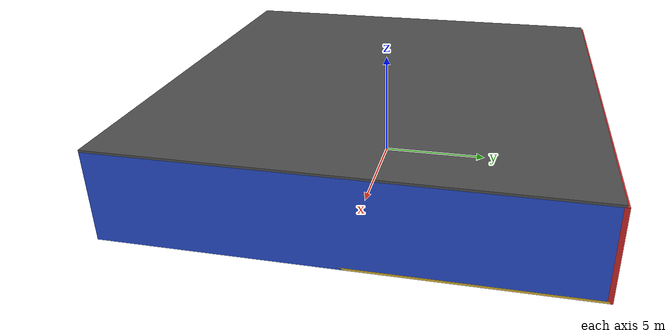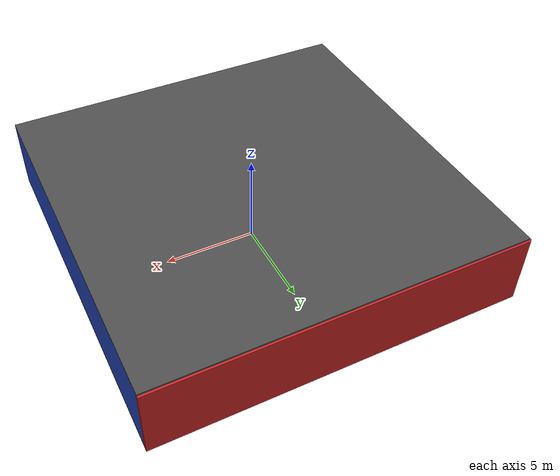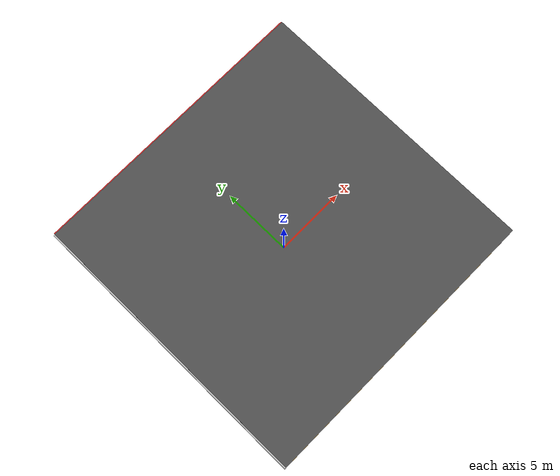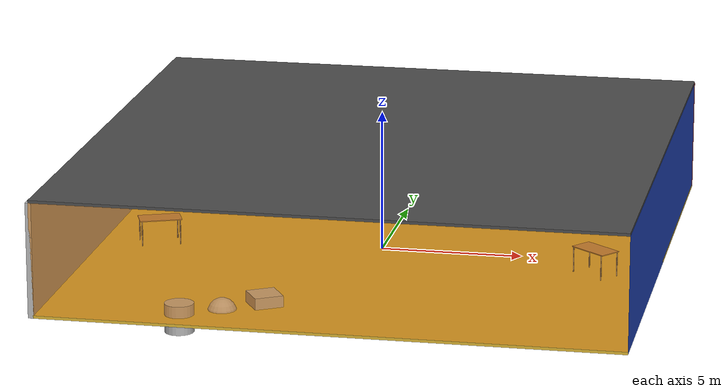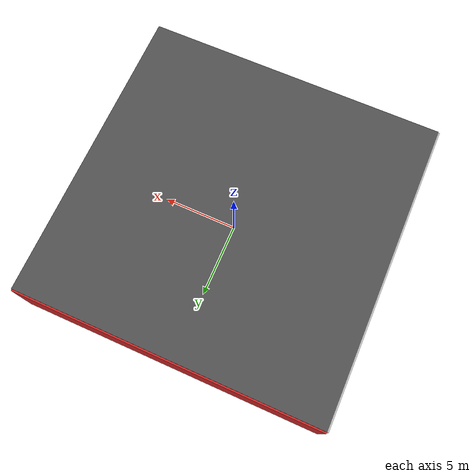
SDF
<sdf version="1.4">
 <world name="default">
  <physics type="ode">
   <max_step_size>0.001</max_step_size>
   <real_time_factor>1</real_time_factor>
   <real_time_update_rate>1000</real_time_update_rate>
   <gravity>0 0 -9.8</gravity>
  </physics>
  <scene><ambient>0.4 0.4 0.4 1</ambient><background>0.7 0.7 0.7 1</background><shadows>1</shadows></scene>
  <model name="Surrounding">
   <static>1</static>
   <link name="Ceiling">
    <collision name="Ceiling_Collision"><geometry><box><size>20 20 0.1</size></box></geometry></collision>
    <visual name="Ceiling_Visual">
     <geometry><box><size>20 20 0.1</size></box></geometry>
     <material>
      <script><uri>file://media/materials/scripts/gazebo.material</uri><name>Gazebo/DarkGrey</name></script>
     </material>
    </visual>
    <pose>0 0 4.05 0 0 0</pose>
   </link>
   <link name="Wall_South">
    <collision name="Wall_South_Collision">
     <geometry><box><size>20 0 4</size></box></geometry>
     <pose>0 0 2 0 -0 0</pose>
    </collision>
    <visual name="Wall_South_Visual">
     <pose>0 0 2 0 -0 0</pose>
     <geometry><box><size>20 0 4</size></box></geometry>
     <material>
      <script>
       <uri>file://media/materials/scripts/gazebo.material</uri>
       <name>Gazebo/OrangeTransparent</name>
      </script>
     </material>
    </visual>
    <velocity_decay><linear>0</linear><angular>0</angular></velocity_decay>
    <pose>0 -10 0 0 -0 0</pose>
   </link>
   <link name="Wall_East">
    <collision name="Wall_21_Collision">
     <geometry><box><size>20 0 4</size></box></geometry>
     <pose>0 0 2 0 -0 0</pose>
    </collision>
    <visual name="Wall_21_Visual">
     <pose>0 0 2 0 -0 0</pose>
     <geometry><box><size>20 0 4</size></box></geometry>
     <material>
      <script><uri>file://media/materials/scripts/gazebo.material</uri><name>Gazebo/Blue</name></script>
     </material>
    </visual>
    <velocity_decay><linear>0</linear><angular>0</angular></velocity_decay>
    <pose>10 0 0 0 -0 1.5708</pose>
   </link>
   <link name="Wall_North">
    <collision name="Wall_22_Collision">
     <geometry><box><size>20 0.2 4</size></box></geometry>
     <pose>0 0 2 0 -0 0</pose>
    </collision>
    <visual name="Wall_22_Visual">
     <pose>0 0 2 0 -0 0</pose>
     <geometry><box><size>20 0.2 4</size></box></geometry>
     <material>
      <script><uri>file://media/materials/scripts/gazebo.material</uri><name>Gazebo/RedGlow</name></script>
     </material>
    </visual>
    <velocity_decay><linear>0</linear><angular>0</angular></velocity_decay>
    <pose>0 10 0 0 -0 0</pose>
   </link>
   <link name="Wall_West">
    <collision name="Wall_23_Collision">
     <geometry><box><size>20 0.2 4</size></box></geometry>
     <pose>0 0 2 0 -0 0</pose>
    </collision>
    <visual name="Wall_23_Visual">
     <pose>0 0 2 0 -0 0</pose>
     <geometry><box><size>20 0.2 4</size></box></geometry>
     <material>
      <script><uri>file://media/materials/scripts/gazebo.material</uri><name>Gazebo/CloudySky</name></script>
     </material>
    </visual>
    <velocity_decay><linear>0</linear><angular>0</angular></velocity_decay>
    <pose>-10 0 0 0 0 -1.5708</pose>
   </link>
   <link name="Ground_link">
    <collision name="collision">
     <pose>0 0 .05 0 -0 0</pose>
     <geometry><box><size>20 20 0.1</size></box></geometry>
    </collision>
    <visual name="visual">
     <pose>0 0 .05 0 -0 0</pose>
     <geometry><box><size>20 20 0.1</size></box></geometry>
     <material>
      <script><uri>file://media/materials/scripts/gazebo.material</uri><name>Gazebo/Gold</name></script>
     </material>
    </visual>
   </link>
   <static>1</static>
  </model>
  <spherical_coordinates>
   <surface_model>EARTH_WGS84</surface_model>
   <latitude_deg>0</latitude_deg>
   <longitude_deg>0</longitude_deg>
   <elevation>0</elevation>
   <heading_deg>0</heading_deg>
  </spherical_coordinates>
  <light name="lightball_0" type="diffuse">
   <diffuse>0.8 0.8 0.8 1</diffuse>
   <specular>0.2 0.2 0.2 1</specular>
   <attenuation>
    <range>100</range>
    <constant>0.7</constant>
    <linear>0.01</linear>
    <quadratic>0.001</quadratic>
   </attenuation>
   <direction>-0.5 0.1 -0.9</direction>
   <pose>7.6658763178 5.88662987145 2.43984470793 0 0 0</pose>
  </light>
  <light name="lightball_1" type="diffuse">
   <diffuse>0.8 0.8 0.8 1</diffuse>
   <specular>0.2 0.2 0.2 1</specular>
   <attenuation>
    <range>100</range>
    <constant>0.7</constant>
    <linear>0.01</linear>
    <quadratic>0.001</quadratic>
   </attenuation>
   <direction>-0.5 0.1 -0.9</direction>
   <pose>8.89712538839 8.70801894706 1.49318809151 0 0 0</pose>
  </light>
  <light name="lightball_2" type="diffuse">
   <diffuse>0.8 0.8 0.8 1</diffuse>
   <specular>0.2 0.2 0.2 1</specular>
   <attenuation>
    <range>100</range>
    <constant>0.7</constant>
    <linear>0.01</linear>
    <quadratic>0.001</quadratic>
   </attenuation>
   <direction>-0.5 0.1 -0.9</direction>
   <pose>7.46115561334 -3.3486737448 2.62247427552 0 0 0</pose>
  </light>
  <light name="lightball_3" type="diffuse">
   <diffuse>0.8 0.8 0.8 1</diffuse>
   <specular>0.2 0.2 0.2 1</specular>
   <attenuation>
    <range>100</range>
    <constant>0.7</constant>
    <linear>0.01</linear>
    <quadratic>0.001</quadratic>
   </attenuation>
   <direction>-0.5 0.1 -0.9</direction>
   <pose>-3.26896051837 -2.53673465006 2.44839715145 0 0 0</pose>
  </light>
  <light name="lightball_4" type="diffuse">
   <diffuse>0.8 0.8 0.8 1</diffuse>
   <specular>0.2 0.2 0.2 1</specular>
   <attenuation>
    <range>100</range>
    <constant>0.7</constant>
    <linear>0.01</linear>
    <quadratic>0.001</quadratic>
   </attenuation>
   <direction>-0.5 0.1 -0.9</direction>
   <pose>-3.09807112535 0.978881351651 2.83631910568 0 0 0</pose>
  </light>
  <light name="lightball_5" type="diffuse">
   <diffuse>0.8 0.8 0.8 1</diffuse>
   <specular>0.2 0.2 0.2 1</specular>
   <attenuation>
    <range>100</range>
    <constant>0.7</constant>
    <linear>0.01</linear>
    <quadratic>0.001</quadratic>
   </attenuation>
   <direction>-0.5 0.1 -0.9</direction>
   <pose>3.77560866256 7.46554295576 3.79837902072 0 0 0</pose>
  </light>
  <light name="lightball_6" type="diffuse">
   <diffuse>0.8 0.8 0.8 1</diffuse>
   <specular>0.2 0.2 0.2 1</specular>
   <attenuation>
    <range>100</range>
    <constant>0.7</constant>
    <linear>0.01</linear>
    <quadratic>0.001</quadratic>
   </attenuation>
   <direction>-0.5 0.1 -0.9</direction>
   <pose>2.24254501961 0.617170547535 1.71951077164 0 0 0</pose>
  </light>
  <light name="lightball_7" type="diffuse">
   <diffuse>0.8 0.8 0.8 1</diffuse>
   <specular>0.2 0.2 0.2 1</specular>
   <attenuation>
    <range>100</range>
    <constant>0.7</constant>
    <linear>0.01</linear>
    <quadratic>0.001</quadratic>
   </attenuation>
   <direction>-0.5 0.1 -0.9</direction>
   <pose>-2.13849931651 -8.05032562821 2.32011902565 0 0 0</pose>
  </light>
  <include><uri>model://table</uri><pose>-7.86366306183 -1.02643653221 0 0 0 0.376678470803</pose></include>
  <include>
   <uri>model://textured_shapes</uri>
   <pose>-3.89615659546 -8.13731373093 0 0 0 2.11702494412</pose>
  </include>
  <include><uri>model://table</uri><pose>7.86165136228 -1.8663173322 0 0 0 2.46729849262</pose></include>
 </world>
</sdf>

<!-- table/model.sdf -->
<sdf version="1.5">
  <model name="table">
    <static>true</static>
    <link name="link">
      <collision name="surface">
        <pose>0 0 1.0 0 0 0</pose>
        <geometry>
          <box>
            <size>1.5 0.8 0.03</size>
          </box>
        </geometry>
        <surface>
          <friction>
            <ode>
              <mu>0.6</mu>
              <mu2>0.6</mu2>
            </ode>
          </friction>
        </surface>
      </collision>
      <visual name="visual1">
        <pose>0 0 1.0 0 0 0</pose>
        <geometry>
          <box>
            <size>1.5 0.8 0.03</size>
          </box>
        </geometry>
        <material>
          <script>
            <uri>model://media/materials/scripts/gazebo.material</uri>
            <name>Gazebo/Wood</name>
          </script>
        </material>
      </visual>
      <collision name="front_left_leg">
        <pose>0.68 0.38 0.5 0 0 0</pose>
        <geometry>
          <cylinder>
            <radius>0.02</radius>
            <length>1.0</length>
          </cylinder>
        </geometry>
      </collision>
      <visual name="front_left_leg">
        <pose>0.68 0.38 0.5 0 0 0</pose>
        <geometry>
          <cylinder>
            <radius>0.02</radius>
            <length>1.0</length>
          </cylinder>
        </geometry>
        <material>
          <script>
            <uri>model://media/materials/scripts/gazebo.material</uri>
            <name>Gazebo/Grey</name>
          </script>
        </material>
      </visual>
      <collision name="front_right_leg">
        <pose>0.68 -0.38 0.5 0 0 0</pose>
        <geometry>
          <cylinder>
            <radius>0.02</radius>
            <length>1.0</length>
          </cylinder>
        </geometry>
      </collision>
      <visual name="front_right_leg">
        <pose>0.68 -0.38 0.5 0 0 0</pose>
        <geometry>
          <cylinder>
            <radius>0.02</radius>
            <length>1.0</length>
          </cylinder>
        </geometry>
        <material>
          <script>
            <uri>model://media/materials/scripts/gazebo.material</uri>
            <name>Gazebo/Grey</name>
          </script>
        </material>
      </visual>
      <collision name="back_right_leg">
        <pose>-0.68 -0.38 0.5 0 0 0</pose>
        <geometry>
          <cylinder>
            <radius>0.02</radius>
            <length>1.0</length>
          </cylinder>
        </geometry>
      </collision>
      <visual name="back_right_leg">
        <pose>-0.68 -0.38 0.5 0 0 0</pose>
        <geometry>
          <cylinder>
            <radius>0.02</radius>
            <length>1.0</length>
          </cylinder>
        </geometry>
        <material>
          <script>
            <uri>model://media/materials/scripts/gazebo.material</uri>
            <name>Gazebo/Grey</name>
          </script>
        </material>
      </visual>
      <collision name="back_left_leg">
        <pose>-0.68 0.38 0.5 0 0 0</pose>
        <geometry>
          <cylinder>
            <radius>0.02</radius>
            <length>1.0</length>
          </cylinder>
        </geometry>
      </collision>
      <visual name="back_left_leg">
        <pose>-0.68 0.38 0.5 0 0 0</pose>
        <geometry>
          <cylinder>
            <radius>0.02</radius>
            <length>1.0</length>
          </cylinder>
        </geometry>
        <material>
          <script>
            <uri>model://media/materials/scripts/gazebo.material</uri>
            <name>Gazebo/Grey</name>
          </script>
        </material>
      </visual>
    </link>
  </model>
</sdf>

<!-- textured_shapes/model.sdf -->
<sdf version="1.6">
  <model name="textured_shapes">
    <pose>0 0 0.5 0 0 0</pose>
    <link name="box">
      <pose>0 -1.5 0 0 0 0</pose>
      <collision name="collision">
        <geometry>
          <box>
            <size>1 1 1</size>
          </box>
        </geometry>
      </collision>
      <visual name="visual">
        <geometry>
          <box>
            <size>1 1 1</size>
          </box>
        </geometry>
        <material>
          <script>
            <uri>model://../model_source/models/textured_shapes/materials/scripts</uri>
            <uri>model://../model_source/models/textured_shapes/materials/textures</uri>
            <name>TexturedShape/Squares</name>
          </script>
        </material>
      </visual>
    </link>
    <link name="sphere">
      <collision name="collision">
        <geometry>
          <sphere>
            <radius>0.5</radius>
          </sphere>
        </geometry>
      </collision>
      <visual name="visual">
        <geometry>
          <sphere>
            <radius>0.5</radius>
          </sphere>
        </geometry>
        <material>
          <script>
            <uri>model://../model_source/models/textured_shapes/materials/scripts</uri>
            <uri>model://../model_source/models/textured_shapes/materials/textures</uri>
            <name>TexturedShape/Squares</name>
          </script>
        </material>
      </visual>
    </link>
    <link name="cylinder">
      <pose>0 1.5 0 0 0 0</pose>
      <collision name="collision">
        <geometry>
          <cylinder>
            <radius>0.5</radius>
            <length>1</length>
          </cylinder>
        </geometry>
      </collision>
      <visual name="visual">
        <geometry>
          <cylinder>
            <radius>0.5</radius>
            <length>1</length>
          </cylinder>
        </geometry>
        <material>
          <script>
            <uri>model://../model_source/models/textured_shapes/materials/scripts</uri>
            <uri>model://../model_source/models/textured_shapes/materials/textures</uri>
            <name>TexturedShape/Squares</name>
          </script>
        </material>
      </visual>
    </link>
  </model>
</sdf>
